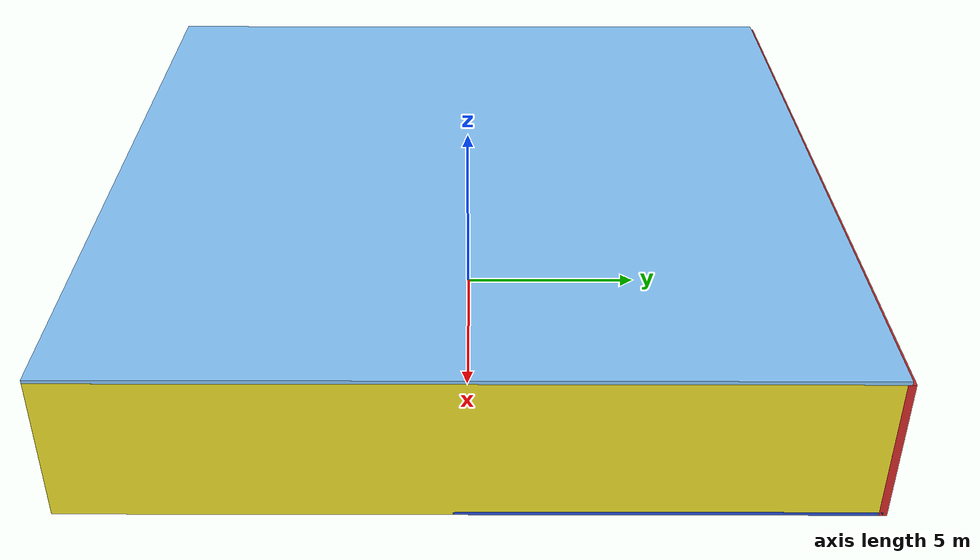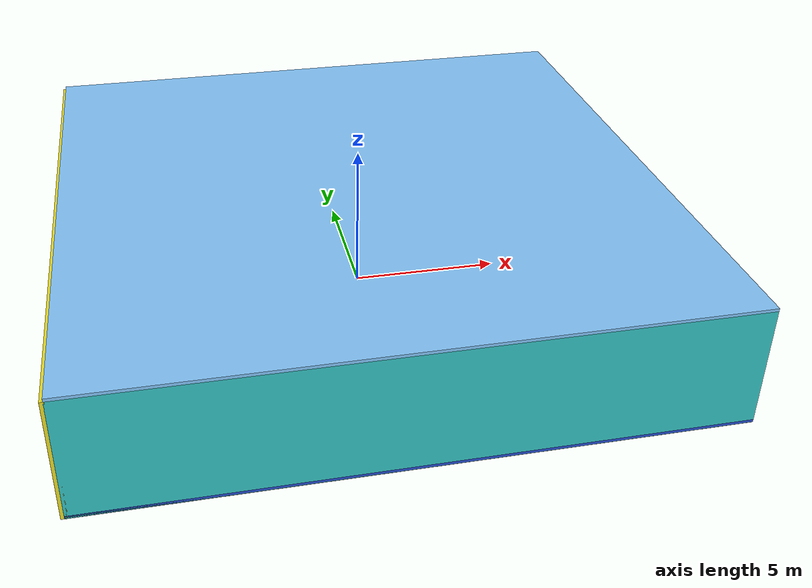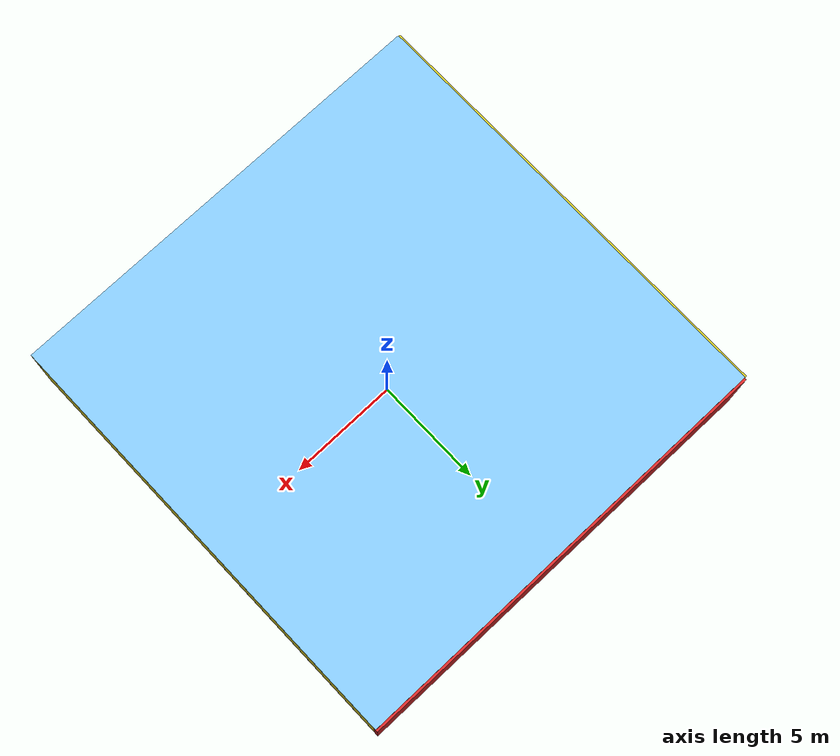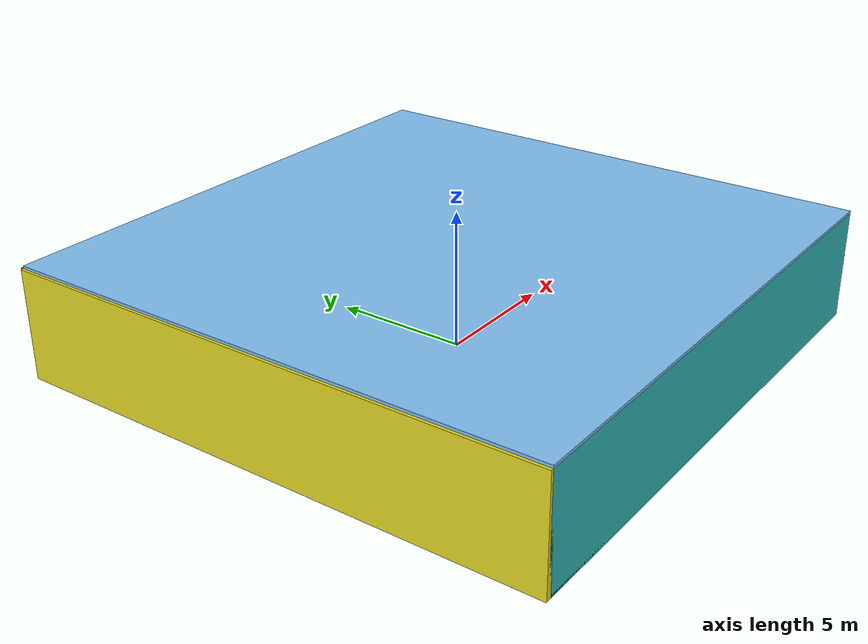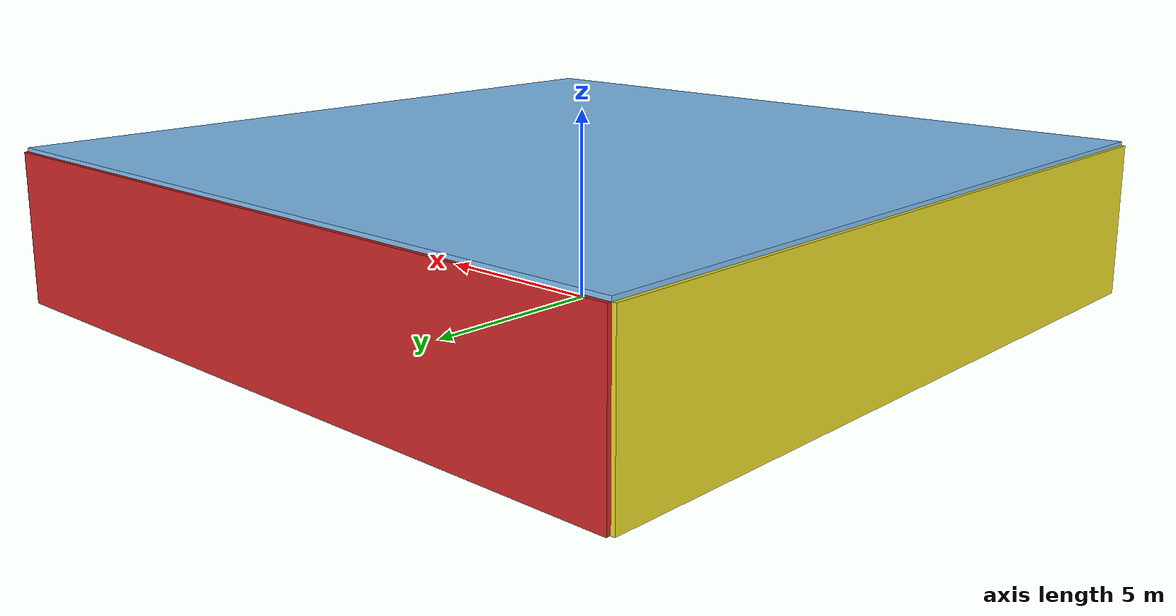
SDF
<sdf version="1.4">
 <world name="default">
  <physics type="ode">
   <max_step_size>0.001</max_step_size>
   <real_time_factor>1</real_time_factor>
   <real_time_update_rate>1000</real_time_update_rate>
   <gravity>0 0 -9.8</gravity>
  </physics>
  <scene><ambient>0.4 0.4 0.4 1</ambient><background>0.7 0.7 0.7 1</background><shadows>1</shadows></scene>
  <model name="Surrounding">
   <static>1</static>
   <link name="Ceiling">
    <collision name="Ceiling_Collision"><geometry><box><size>20 20 0.1</size></box></geometry></collision>
    <visual name="Ceiling_Visual">
     <geometry><box><size>20 20 0.1</size></box></geometry>
     <material>
      <script><uri>file://media/materials/scripts/gazebo.material</uri><name>Gazebo/SkyBlue</name></script>
     </material>
    </visual>
    <pose>0 0 4.05 0 0 0</pose>
   </link>
   <link name="Wall_South">
    <collision name="Wall_South_Collision">
     <geometry><box><size>20 0 4</size></box></geometry>
     <pose>0 0 2 0 -0 0</pose>
    </collision>
    <visual name="Wall_South_Visual">
     <pose>0 0 2 0 -0 0</pose>
     <geometry><box><size>20 0 4</size></box></geometry>
     <material>
      <script><uri>file://media/materials/scripts/gazebo.material</uri><name>Gazebo/Turquoise</name></script>
     </material>
    </visual>
    <velocity_decay><linear>0</linear><angular>0</angular></velocity_decay>
    <pose>0 -10 0 0 -0 0</pose>
   </link>
   <link name="Wall_East">
    <collision name="Wall_21_Collision">
     <geometry><box><size>20 0 4</size></box></geometry>
     <pose>0 0 2 0 -0 0</pose>
    </collision>
    <visual name="Wall_21_Visual">
     <pose>0 0 2 0 -0 0</pose>
     <geometry><box><size>20 0 4</size></box></geometry>
     <material>
      <script><uri>file://media/materials/scripts/gazebo.material</uri><name>Gazebo/YellowGlow</name></script>
     </material>
    </visual>
    <velocity_decay><linear>0</linear><angular>0</angular></velocity_decay>
    <pose>10 0 0 0 -0 1.5708</pose>
   </link>
   <link name="Wall_North">
    <collision name="Wall_22_Collision">
     <geometry><box><size>20 0.2 4</size></box></geometry>
     <pose>0 0 2 0 -0 0</pose>
    </collision>
    <visual name="Wall_22_Visual">
     <pose>0 0 2 0 -0 0</pose>
     <geometry><box><size>20 0.2 4</size></box></geometry>
     <material>
      <script><uri>file://media/materials/scripts/gazebo.material</uri><name>Gazebo/RedBright</name></script>
     </material>
    </visual>
    <velocity_decay><linear>0</linear><angular>0</angular></velocity_decay>
    <pose>0 10 0 0 -0 0</pose>
   </link>
   <link name="Wall_West">
    <collision name="Wall_23_Collision">
     <geometry><box><size>20 0.2 4</size></box></geometry>
     <pose>0 0 2 0 -0 0</pose>
    </collision>
    <visual name="Wall_23_Visual">
     <pose>0 0 2 0 -0 0</pose>
     <geometry><box><size>20 0.2 4</size></box></geometry>
     <material>
      <script><uri>file://media/materials/scripts/gazebo.material</uri><name>Gazebo/YellowGlow</name></script>
     </material>
    </visual>
    <velocity_decay><linear>0</linear><angular>0</angular></velocity_decay>
    <pose>-10 0 0 0 0 -1.5708</pose>
   </link>
   <link name="Ground_link">
    <collision name="collision">
     <pose>0 0 .05 0 -0 0</pose>
     <geometry><box><size>20 20 0.1</size></box></geometry>
    </collision>
    <visual name="visual">
     <pose>0 0 .05 0 -0 0</pose>
     <geometry><box><size>20 20 0.1</size></box></geometry>
     <material>
      <script><uri>file://media/materials/scripts/gazebo.material</uri><name>Gazebo/BlueGlow</name></script>
     </material>
    </visual>
   </link>
   <static>1</static>
  </model>
  <spherical_coordinates>
   <surface_model>EARTH_WGS84</surface_model>
   <latitude_deg>0</latitude_deg>
   <longitude_deg>0</longitude_deg>
   <elevation>0</elevation>
   <heading_deg>0</heading_deg>
  </spherical_coordinates>
  <light name="lightball_0" type="diffuse">
   <diffuse>0.8 0.8 0.8 1</diffuse>
   <specular>0.2 0.2 0.2 1</specular>
   <attenuation>
    <range>100</range>
    <constant>0.7</constant>
    <linear>0.01</linear>
    <quadratic>0.001</quadratic>
   </attenuation>
   <direction>-0.5 0.1 -0.9</direction>
   <pose>-2.90753944073 -2.08166558659 2.3432230254 0 0 0</pose>
  </light>
  <light name="lightball_1" type="diffuse">
   <diffuse>0.8 0.8 0.8 1</diffuse>
   <specular>0.2 0.2 0.2 1</specular>
   <attenuation>
    <range>100</range>
    <constant>0.7</constant>
    <linear>0.01</linear>
    <quadratic>0.001</quadratic>
   </attenuation>
   <direction>-0.5 0.1 -0.9</direction>
   <pose>6.57512506782 -0.426360721409 1.0654761649 0 0 0</pose>
  </light>
  <light name="lightball_2" type="diffuse">
   <diffuse>0.8 0.8 0.8 1</diffuse>
   <specular>0.2 0.2 0.2 1</specular>
   <attenuation>
    <range>100</range>
    <constant>0.7</constant>
    <linear>0.01</linear>
    <quadratic>0.001</quadratic>
   </attenuation>
   <direction>-0.5 0.1 -0.9</direction>
   <pose>1.44110682578 -1.9587844175 1.42296574391 0 0 0</pose>
  </light>
  <light name="lightball_3" type="diffuse">
   <diffuse>0.8 0.8 0.8 1</diffuse>
   <specular>0.2 0.2 0.2 1</specular>
   <attenuation>
    <range>100</range>
    <constant>0.7</constant>
    <linear>0.01</linear>
    <quadratic>0.001</quadratic>
   </attenuation>
   <direction>-0.5 0.1 -0.9</direction>
   <pose>7.89791827102 7.92447217795 1.41029338759 0 0 0</pose>
  </light>
  <light name="lightball_4" type="diffuse">
   <diffuse>0.8 0.8 0.8 1</diffuse>
   <specular>0.2 0.2 0.2 1</specular>
   <attenuation>
    <range>100</range>
    <constant>0.7</constant>
    <linear>0.01</linear>
    <quadratic>0.001</quadratic>
   </attenuation>
   <direction>-0.5 0.1 -0.9</direction>
   <pose>-6.35982264384 0.237855757134 2.70696459966 0 0 0</pose>
  </light>
  <include><uri>model://cabinet</uri><pose>-6.42136872864 7.831311829 0 0 0 0.129314070328</pose></include>
  <include><uri>model://cabinet</uri><pose>-4.90536913372 4.82928065982 0 0 0 0.905597971533</pose></include>
  <include><uri>model://cabinet</uri><pose>-5.56307821527 7.06659800444 0 0 0 2.35380172772</pose></include>
  <include>
   <uri>model://textured_shapes</uri>
   <pose>1.02755776919 4.14153208674 0 0 0 2.33778146967</pose>
  </include>
  <include><uri>model://table</uri><pose>7.89706889467 -4.43600148387 0 0 0 3.0261997454</pose></include>
  <include><uri>model://cabinet</uri><pose>7.43871791867 -0.404577559109 0 0 0 2.574133496</pose></include>
 </world>
</sdf>

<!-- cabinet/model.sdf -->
<sdf version="1.5">
  <model name="cabinet">
    <static>true</static>
    <link name="cabinet_bottom_plate">
      <inertial>
        <pose>0 0 -1 0 0 0</pose>
        <inertia>
          <ixx>2.050000</ixx>
          <ixy>0</ixy>
          <ixz>0</ixz>
          <iyy>2.050000</iyy>
          <iyz>0</iyz>
          <izz>2.050000</izz>
        </inertia>
        <mass>25.000000</mass>
      </inertial>
      <collision name="cabinet_bottom_plate_geom">
        <pose>0 0 0.010000 0 0 0</pose>
        <geometry>
          <box>
            <size>0.450000 0.450000 0.020000</size>
          </box>
        </geometry>
      </collision>
      <visual name="cabinet_bottom_plate_geom_visual">
        <pose>0 0 0.010000 0 0 0</pose>
        <geometry>
          <box>
            <size>0.450000 0.450000 0.020000</size>
          </box>
        </geometry>
        <material>
          <script>
            <uri>model://media/materials/scripts/gazebo.material</uri>
            <name>Gazebo/Wood</name>
          </script>
        </material>
      </visual>
      <collision name="cabinet_bottom_plate_geom_cabinet_back_plate">
        <pose>0.235000 0 0.510000 0 0 0</pose>
        <geometry>
          <box>
            <size>0.020000 0.450000 1.020000</size>
          </box>
        </geometry>
      </collision>
      <visual name="cabinet_bottom_plate_geom_cabinet_back_plate_visual">
        <pose>0.235000 0 0.510000 0 0 0</pose>
        <geometry>
          <box>
            <size>0.020000 0.450000 1.020000</size>
          </box>
        </geometry>
        <material>
          <script>
            <uri>model://media/materials/scripts/gazebo.material</uri>
            <name>Gazebo/Wood</name>
          </script>
        </material>
      </visual>
      <collision name="cabinet_bottom_plate_geom_cabinet_left_plate">
        <pose>0 0.235000 0.510000 0 0 0</pose>
        <geometry>
          <box>
            <size>0.450000 0.020000 1.020000</size>
          </box>
        </geometry>
      </collision>
      <visual name="cabinet_bottom_plate_geom_cabinet_left_plate_visual">
        <pose>0 0.235000 0.510000 0 0 0</pose>
        <geometry>
          <box>
            <size>0.450000 0.020000 1.020000</size>
          </box>
        </geometry>
        <material>
          <script>
            <uri>model://media/materials/scripts/gazebo.material</uri>
            <name>Gazebo/Wood</name>
          </script>
        </material>
      </visual>
      <collision name="cabinet_bottom_plate_geom_cabinet_middle_plate">
        <pose>0 0 0.510000 0 0 0</pose>
        <geometry>
          <box>
            <size>0.450000 0.450000 0.020000</size>
          </box>
        </geometry>
      </collision>
      <visual name="cabinet_bottom_plate_geom_cabinet_middle_plate_visual">
        <pose>0 0 0.510000 0 0 0</pose>
        <geometry>
          <box>
            <size>0.450000 0.450000 0.020000</size>
          </box>
        </geometry>
        <material>
          <script>
            <uri>model://media/materials/scripts/gazebo.material</uri>
            <name>Gazebo/Wood</name>
          </script>
        </material>
      </visual>
      <collision name="cabinet_bottom_plate_geom_cabinet_right_plate">
        <pose>0 -0.235000 0.510000 0 0 0</pose>
        <geometry>
          <box>
            <size>0.450000 0.020000 1.020000</size>
          </box>
        </geometry>
      </collision>
      <visual name="cabinet_bottom_plate_geom_cabinet_right_plate_visual">
        <pose>0 -0.235000 0.510000 0 0 0</pose>
        <geometry>
          <box>
            <size>0.450000 0.020000 1.020000</size>
          </box>
        </geometry>
        <material>
          <script>
            <uri>model://media/materials/scripts/gazebo.material</uri>
            <name>Gazebo/Wood</name>
          </script>
        </material>
      </visual>
      <collision name="cabinet_bottom_plate_geom_cabinet_top_plate">
        <pose>0 0 1.010000 0 0 0</pose>
        <geometry>
          <box>
            <size>0.450000 0.450000 0.020000</size>
          </box>
        </geometry>
      </collision>
      <visual name="cabinet_bottom_plate_geom_cabinet_top_plate_visual">
        <pose>0 0 1.010000 0 0 0</pose>
        <geometry>
          <box>
            <size>0.450000 0.450000 0.020000</size>
          </box>
        </geometry>
        <material>
          <script>
            <uri>model://media/materials/scripts/gazebo.material</uri>
            <name>Gazebo/Wood</name>
          </script>
        </material>
      </visual>
    </link>
  </model>
</sdf>

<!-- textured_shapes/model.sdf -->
<sdf version="1.6">
  <model name="textured_shapes">
    <pose>0 0 0.5 0 0 0</pose>
    <link name="box">
      <pose>0 -1.5 0 0 0 0</pose>
      <collision name="collision">
        <geometry>
          <box>
            <size>1 1 1</size>
          </box>
        </geometry>
      </collision>
      <visual name="visual">
        <geometry>
          <box>
            <size>1 1 1</size>
          </box>
        </geometry>
        <material>
          <script>
            <uri>model://../model_source/models/textured_shapes/materials/scripts</uri>
            <uri>model://../model_source/models/textured_shapes/materials/textures</uri>
            <name>TexturedShape/Squares</name>
          </script>
        </material>
      </visual>
    </link>
    <link name="sphere">
      <collision name="collision">
        <geometry>
          <sphere>
            <radius>0.5</radius>
          </sphere>
        </geometry>
      </collision>
      <visual name="visual">
        <geometry>
          <sphere>
            <radius>0.5</radius>
          </sphere>
        </geometry>
        <material>
          <script>
            <uri>model://../model_source/models/textured_shapes/materials/scripts</uri>
            <uri>model://../model_source/models/textured_shapes/materials/textures</uri>
            <name>TexturedShape/Squares</name>
          </script>
        </material>
      </visual>
    </link>
    <link name="cylinder">
      <pose>0 1.5 0 0 0 0</pose>
      <collision name="collision">
        <geometry>
          <cylinder>
            <radius>0.5</radius>
            <length>1</length>
          </cylinder>
        </geometry>
      </collision>
      <visual name="visual">
        <geometry>
          <cylinder>
            <radius>0.5</radius>
            <length>1</length>
          </cylinder>
        </geometry>
        <material>
          <script>
            <uri>model://../model_source/models/textured_shapes/materials/scripts</uri>
            <uri>model://../model_source/models/textured_shapes/materials/textures</uri>
            <name>TexturedShape/Squares</name>
          </script>
        </material>
      </visual>
    </link>
  </model>
</sdf>

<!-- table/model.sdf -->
<sdf version="1.5">
  <model name="table">
    <static>true</static>
    <link name="link">
      <collision name="surface">
        <pose>0 0 1.0 0 0 0</pose>
        <geometry>
          <box>
            <size>1.5 0.8 0.03</size>
          </box>
        </geometry>
        <surface>
          <friction>
            <ode>
              <mu>0.6</mu>
              <mu2>0.6</mu2>
            </ode>
          </friction>
        </surface>
      </collision>
      <visual name="visual1">
        <pose>0 0 1.0 0 0 0</pose>
        <geometry>
          <box>
            <size>1.5 0.8 0.03</size>
          </box>
        </geometry>
        <material>
          <script>
            <uri>model://media/materials/scripts/gazebo.material</uri>
            <name>Gazebo/Wood</name>
          </script>
        </material>
      </visual>
      <collision name="front_left_leg">
        <pose>0.68 0.38 0.5 0 0 0</pose>
        <geometry>
          <cylinder>
            <radius>0.02</radius>
            <length>1.0</length>
          </cylinder>
        </geometry>
      </collision>
      <visual name="front_left_leg">
        <pose>0.68 0.38 0.5 0 0 0</pose>
        <geometry>
          <cylinder>
            <radius>0.02</radius>
            <length>1.0</length>
          </cylinder>
        </geometry>
        <material>
          <script>
            <uri>model://media/materials/scripts/gazebo.material</uri>
            <name>Gazebo/Grey</name>
          </script>
        </material>
      </visual>
      <collision name="front_right_leg">
        <pose>0.68 -0.38 0.5 0 0 0</pose>
        <geometry>
          <cylinder>
            <radius>0.02</radius>
            <length>1.0</length>
          </cylinder>
        </geometry>
      </collision>
      <visual name="front_right_leg">
        <pose>0.68 -0.38 0.5 0 0 0</pose>
        <geometry>
          <cylinder>
            <radius>0.02</radius>
            <length>1.0</length>
          </cylinder>
        </geometry>
        <material>
          <script>
            <uri>model://media/materials/scripts/gazebo.material</uri>
            <name>Gazebo/Grey</name>
          </script>
        </material>
      </visual>
      <collision name="back_right_leg">
        <pose>-0.68 -0.38 0.5 0 0 0</pose>
        <geometry>
          <cylinder>
            <radius>0.02</radius>
            <length>1.0</length>
          </cylinder>
        </geometry>
      </collision>
      <visual name="back_right_leg">
        <pose>-0.68 -0.38 0.5 0 0 0</pose>
        <geometry>
          <cylinder>
            <radius>0.02</radius>
            <length>1.0</length>
          </cylinder>
        </geometry>
        <material>
          <script>
            <uri>model://media/materials/scripts/gazebo.material</uri>
            <name>Gazebo/Grey</name>
          </script>
        </material>
      </visual>
      <collision name="back_left_leg">
        <pose>-0.68 0.38 0.5 0 0 0</pose>
        <geometry>
          <cylinder>
            <radius>0.02</radius>
            <length>1.0</length>
          </cylinder>
        </geometry>
      </collision>
      <visual name="back_left_leg">
        <pose>-0.68 0.38 0.5 0 0 0</pose>
        <geometry>
          <cylinder>
            <radius>0.02</radius>
            <length>1.0</length>
          </cylinder>
        </geometry>
        <material>
          <script>
            <uri>model://media/materials/scripts/gazebo.material</uri>
            <name>Gazebo/Grey</name>
          </script>
        </material>
      </visual>
    </link>
  </model>
</sdf>
